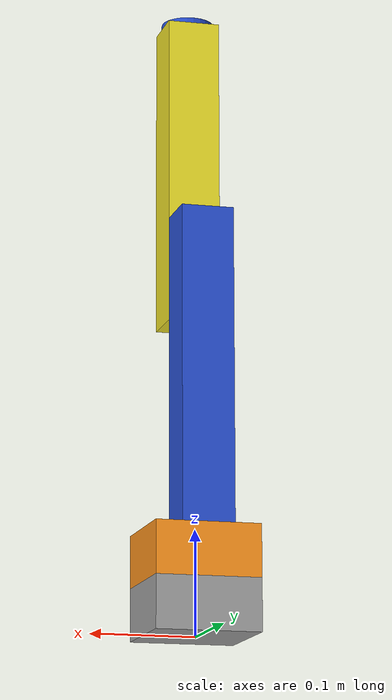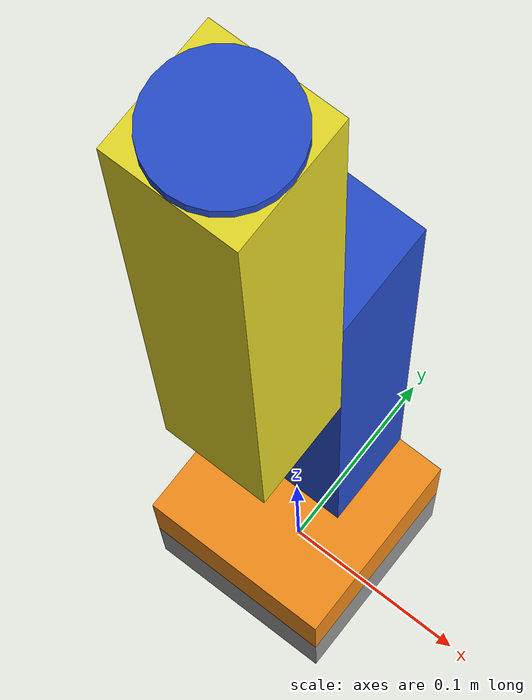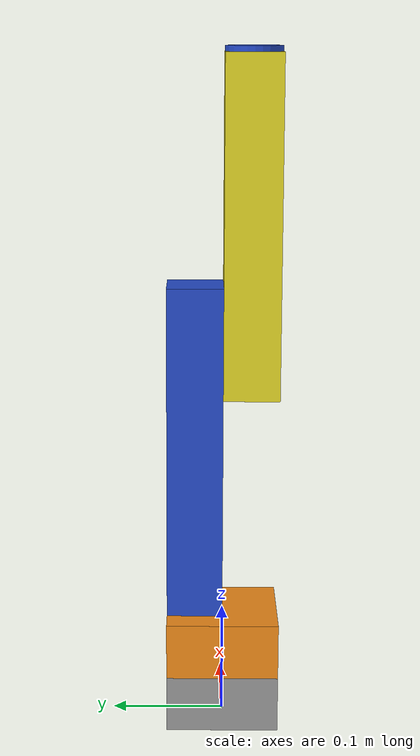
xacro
<?xml version="1.0"?>
<robot xmlns:xacro="http://www.ros.org/wiki/xacro">

  <xacro:property name="base_l" value="0.1" />
  <xacro:property name="base_w" value="0.1" />
  <xacro:property name="base_h" value="0.05" />
  <xacro:property name="base_m" value="0.3" />
  <xacro:property name="arm_l" value="0.05" />
  <xacro:property name="arm_w" value="0.05" />
  <xacro:property name="arm_h" value="0.3" />
  <xacro:property name="arm_m" value="0.3" />
  <xacro:property name="wrist_r" value="0.025" />
  <xacro:property name="wrist_l" value="0.01" />
  <xacro:property name="wrist_m" value="0.1" />
  <xacro:property name="gripper_l" value="0.05" />
  <xacro:property name="gripper_w" value="0.05" />
  <xacro:property name="gripper_h" value="0.1" />
  <xacro:property name="gripper_m" value="0.1" />

  <link name="static_base_link">
    <visual>
      <geometry>
        <box size="${base_l} ${base_w} ${base_h}" />
      </geometry>
      <origin xyz="0 0 ${base_h/2.0}" rpy="0 0 0" />
      <material name="grey" />
    </visual>
    <xacro:inertia_box m="${base_m}" l="${base_l}" w="${base_w}" h="${base_h}"
      xyz="0 0 ${-base_h/2.0}" rpy="0 0 0" />
    <collision>
      <origin xyz="0 0 ${base_h/2.0}" rpy="0 0 0" />
      <geometry>
        <box size="${base_l} ${base_w} ${base_h}" />
      </geometry>
    </collision>
  </link>

  <link name="arm_base_link">
    <visual>
      <geometry>
        <box size="${base_l} ${base_w} ${base_h}" />
      </geometry>
      <origin xyz="0 0 ${base_h/2.0}" rpy="0 0 0" />
      <material name="orange" />
    </visual>
    <xacro:inertia_box m="${base_m}" l="${base_l}" w="${base_w}" h="${base_h}"
      xyz="0 0 ${-base_h/2.0}" rpy="0 0 0" />
    <collision>
      <origin xyz="0 0 ${base_h/2.0}" rpy="0 0 0" />
      <geometry>
        <box size="${base_l} ${base_w} ${base_h}" />
      </geometry>
    </collision>
  </link>

  <joint name="bases_joint" type="revolute">
    <axis xyz="0 0 1" />
    <origin xyz="0 0 ${base_h}" rpy="0 0 0" />
    <limit effort="1000.0" upper="${pi}" lower="${-pi}" velocity="0.5" />
    <parent link="static_base_link" />
    <child link="arm_base_link" />
  </joint>

  <xacro:macro name="arm_links" params="prefix color y_offset">
    <link name="${prefix}_link">
      <visual>
        <geometry>
          <box size="${arm_l} ${arm_w} ${arm_h}" />
        </geometry>
        <origin xyz="0 ${y_offset} ${arm_h/2}" rpy="0 0 0"></origin>
        <material name="${color}" />
      </visual>
      <collision>
        <origin xyz="0 0 ${arm_h/2}" rpy="0 0 0"></origin>
        <geometry>
          <box size="${arm_l} ${arm_w} ${arm_h}" />
        </geometry>
      </collision>
      <xacro:inertia_box m="${arm_m}" l="${arm_l}" w="${arm_w}" h="${arm_h}"
        xyz="0 0 ${-arm_h/2.0}" rpy="0 0 0" />
    </link>
  </xacro:macro>

  <xacro:arm_links prefix="arm_1" color="blue" y_offset="0" />

  <joint name="base_arm1_joint" type="revolute">
    <axis xyz="0 1 0" />
    <origin xyz="0 ${arm_w/2} ${base_h}" rpy="0 0 0" />
    <limit effort="1000.0" upper="${pi}" lower="${-pi}" velocity="0.5" />
    <parent link="arm_base_link" />
    <child link="arm_1_link" />
  </joint>

  <xacro:arm_links prefix="arm_2" color="yellow" y_offset="${-arm_w/2.0}"/>

  <joint name="arm1_arm2_joint" type="revolute">
    <axis xyz="0 1 0" />
    <origin xyz="0 ${-arm_w/2} ${arm_h-0.1}" rpy="0 0 0" />
    <limit effort="1000.0" upper="${pi}" lower="${-pi}" velocity="0.5" />
    <parent link="arm_1_link" />
    <child link="arm_2_link" />
  </joint>

  <link name="wrist_link">
    <visual>
      <geometry>
        <cylinder radius="${wrist_r}" length="${wrist_l}" />
      </geometry>
      <origin xyz="0 0 0" rpy="0 0 0"/>
      <material name="blue" />
    </visual>
    <collision>
      <origin xyz="0 0 0" rpy="0 0 0"/>
      <geometry>
        <cylinder radius="${wrist_r}" length="${wrist_l}" />
      </geometry>
    </collision>
    <xacro:inertia_cylinder m="${arm_m}" h="${wrist_l}" r="${wrist_r}"
      xyz="0 0 ${-arm_h/2.0}" rpy="0 0 0" />
  </link>

  <joint name="arm1_wrist_joint" type="revolute">
    <axis xyz="0 0 1" />
    <origin xyz="0 ${-arm_w/2.0} ${arm_h}" rpy="0 0 0" />
    <limit effort="1000.0" upper="${pi}" lower="${-pi}" velocity="0.5" />
    <parent link="arm_2_link" />
    <child link="wrist_link" />
  </joint>

</robot>
